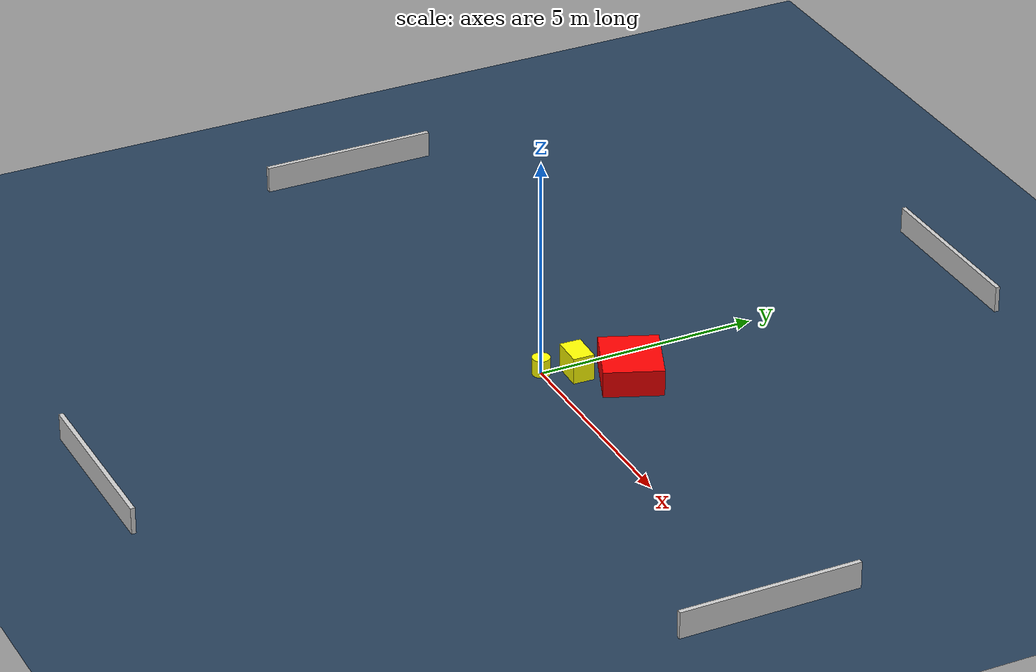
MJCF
<?xml version="1.0" ?>
<mujoco model="generated_environment">
  <option timestep="0.01" integrator="RK4" cone="elliptic"/>
  <default>
    <geom density="1"/>
  </default>
  <asset>
    <texture builtin="gradient" height="3072" name="skybox" rgb1="0.3 0.5 0.7" rgb2="0 0 0" type="skybox" width="512"/>
    <texture builtin="checker" height="300" name="groundplane" rgb1="0.2 0.3 0.4" rgb2="0.1 0.2 0.3" type="2d" width="300"/>
    <material name="groundplane" reflectance="0.2" texrepeat="5 5" texture="groundplane"/>
  </asset>
  <worldbody>
    <light dir="0 0 -1" directional="true" pos="0 0 1.5"/>
    <geom condim="3" friction="0.5 0.005 0.001" material="groundplane" name="floor" pos="0 0 0" size="0 0 0.05" type="plane"/>
    <body name="walls">
      <geom name="wall_1" condim="4" pos="-10.0 0.0 0.3" rgba="0.800000011920929 0.800000011920929 0.800000011920929 1.0" size="0.05 2.0 0.3" type="box"/>
      <geom name="wall_2" condim="4" pos="10.0 0.0 0.3" rgba="0.800000011920929 0.800000011920929 0.800000011920929 1.0" size="0.05 2.0 0.3" type="box"/>
      <geom name="wall_3" condim="4" pos="0.0 -10.0 0.3" rgba="0.800000011920929 0.800000011920929 0.800000011920929 1.0" size="2.0 0.05 0.3" type="box"/>
      <geom name="wall_4" condim="4" pos="0.0 10.0 0.3" rgba="0.800000011920929 0.800000011920929 0.800000011920929 1.0" size="2.0 0.05 0.3" type="box"/>
    </body>
    <body name="robot">
      <joint name="joint_x" type="slide" pos="0 0 0" axis="1 0 0"/>
      <joint name="joint_y" type="slide" pos="0 0 0" axis="0 1 0"/>
      <geom name="robot" type="cylinder" pos="0.0 0.0 0.2" size="0.2 0.2 0.0" mass="5.0" friction="1.0 0.005 0.0001" condim="4" rgba="1.0 1.0 0.0 1.0"/>
    </body>
    <body name="obstacle_1_movable">
      <geom name="obstacle_1_movable" condim="4" pos="0.346759189211055 0.6686068481696278 0.3" euler="0 0 357.998531540504" friction="0.0 0.005 0.001" rgba="1.0 1.0 0.0 1.0" size="0.3561256087606606 0.23974102278665188 0.3" type="box" mass="0.1"/>
      <joint type="free"/>
    </body>
    <body name="obstacle_2_static">
      <geom name="obstacle_2_static" condim="4" pos="1.0139539699791575 1.607132514219169 0.3" euler="0 0 337.6123330439799" friction="0.0 0.005 0.001" rgba="1.0 0.0 0.0 1.0" size="0.7469975417027965 0.6529010065095087 0.3" type="box"/>
    </body>
  </worldbody>
  <actuator>
    <motor name="actuator_x" joint="joint_x" gear="1" ctrlrange="-1 1"/>
    <motor name="actuator_y" joint="joint_y" gear="1" ctrlrange="-1 1"/>
  </actuator>
</mujoco>
